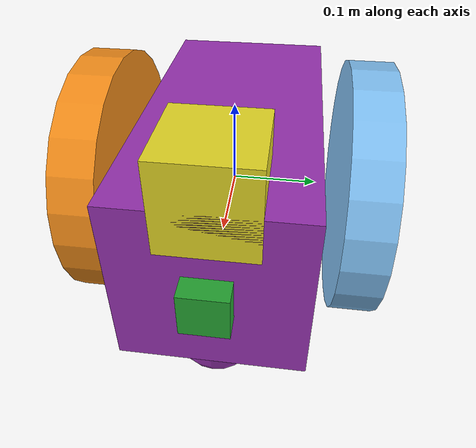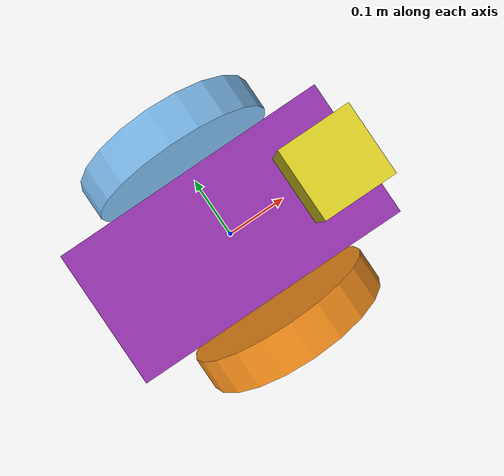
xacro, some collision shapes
<?xml version='1.0'?>

<robot name="my_robot" xmlns:xacro="http://www.ros.org/wiki/xacro">

    <xacro:include filename="$(find my_robot)/urdf/my_robot.gazebo" />
    <link name="robot_footprint"></link>

    <joint name="robot_footprint_joint" type="fixed">
        <origin xyz="0 0 0" rpy="0 0 0" />
        <parent link="robot_footprint"/>
        <child link="chassis" />
    </joint>

    <link name='chassis'>
        <pose>0 0 0.15 0 0 0</pose>

        <inertial>
            <mass value="15.0"/>
            <origin xyz="0.0 0 0" rpy=" 0 0 0"/>
            <inertia
                ixx="0.1" ixy="0" ixz="0"
                iyy="0.1" iyz="0"
                izz="0.1"
            />
        </inertial>

        <collision name='collision'>
            <origin xyz="0 0 0" rpy=" 0 0 0"/>
            <geometry>
            <box size=".4 .2 .2"/>
            </geometry>
        </collision>

        <visual name='chassis_visual'>
            <origin xyz="0 0 0" rpy=" 0 0 0"/>
            <geometry>
            <box size=".4 .2 .2"/>
            </geometry>
        </visual>

        <collision name='back_caster_collision'>
            <origin xyz="-0.15 0 -0.10" rpy=" 0 0 0"/>
            <geometry>
            <sphere radius="0.0499"/>
            </geometry>
        </collision>

        <visual name='back_caster_visual'>
            <origin xyz="-0.15 0 -0.10" rpy=" 0 0 0"/>
            <geometry>
            <sphere radius="0.05"/>
            </geometry>
        </visual>

        <collision name='front_caster_collision'>
            <origin xyz="0.15 0 -0.10" rpy=" 0 0 0"/>
            <geometry>
            <sphere radius="0.0499"/>
            </geometry>
        </collision>

        <visual name='front_caster_visual'>
            <origin xyz="0.15 0 -0.10" rpy=" 0 0 0"/>
            <geometry>
            <sphere radius="0.05"/>
            </geometry>
        </visual>

    </link>

    <link name="left_wheel">
        <collision>
            <origin xyz="0 0 0" rpy=" 0 1.5707 1.5707"/>
            <geometry>
                <cylinder radius="0.15" length="0.05"/>
            </geometry>

        </collision>

        <inertial>
            <mass value="5"/>
            <origin xyz="0 0 0" rpy=" 0 1.5707 1.5707"/>
            <inertia
                ixx="0.1" ixy="0" ixz="0"
                iyy="0.1" iyz="0"
                izz="0.1"
            />
        </inertial>

        <visual>
            <mass value="5"/>
            <origin xyz="0 0 0" rpy=" 0 1.5707 1.5707"/>
            <geometry>
                <cylinder radius="0.15" length="0.05"/>
            </geometry>
        </visual>

    </link>

     <link name="right_wheel">
        <collision>
            <origin xyz="0 0 0" rpy=" 0 1.5707 1.5707"/>
            <geometry>
                <cylinder radius="0.15" length="0.05"/>
            </geometry>

        </collision>

        <inertial>
            <mass value="5"/>
            <origin xyz="0 0 0" rpy=" 0 1.5707 1.5707"/>
            <inertia
                ixx="0.1" ixy="0" ixz="0"
                iyy="0.1" iyz="0"
                izz="0.1"
            />
        </inertial>

        <visual>
            <origin xyz="0 0 0" rpy=" 0 1.5707 1.5707"/>
            <geometry>
                <cylinder radius="0.15" length="0.05"/>
            </geometry>
        </visual>

    </link>

    <joint type="continuous" name="left_wheel_hinge">
        <origin xyz="0 0.15 0" rpy="0 0 0"/>
        <child link="left_wheel"/>
        <parent link="chassis"/>
        <axis xyz="0 1 0" rpy="0 0 0"/>
        <limit effort="10000" velocity="1000"/>
        <dynamics damping="1.0" friction="1.0"/>
    </joint>

    <joint type="continuous" name="right_wheel_hinge">
        <origin xyz="0 -0.15 0" rpy="0 0 0"/>
        <child link="right_wheel"/>
        <parent link="chassis"/>
        <axis xyz="0 1 0" rpy="0 0 0"/>
        <limit effort="10000" velocity="1000"/>
        <dynamics damping="1.0" friction="1.0"/>
    </joint>

    <!-- lesson 4.7 add camera -->
    <link name="camera">
        <collision>
            <origin xyz="0 0 0" rpy="0 0 0"/>
            <geometry>
                <box size="0.05 0.05 0.05" />
            </geometry>

        </collision>

        <inertial>
            <origin xyz="0 0 0" rpy="0 0 0"/>
            <mass   value="0.1"/>
            <inertia
                ixx="1e-6" ixy="0" ixz="0"
                iyy="1e-6" iyz="0"
                izz="1e-6"
            />

        </inertial>
        <visual>
            <origin xyz="0 0 0" rpy=" 0 0 0"/>
            <geometry>
                <box size="0.05 0.05 0.05" />
            </geometry>
        </visual>

    </link>

    <joint name="camera_joint" type="fixed">
        <axis xyz="0 1 0"/>
        <origin xyz="0.2 0 0" rpy="0 0 0" />
        <parent link="chassis"/>
        <child link="camera"/>
    </joint>

    <!-- 4.7 add lidar -->
     <link name="hokuyo">
        <collision>
            <origin xyz="0 0 0" rpy="0 0 0"/>
            <geometry>
                <box size="0.1 0.1 0.1" />
            </geometry>

        </collision>

        <inertial>
            <origin xyz="0 0 0" rpy="0 0 0"/>
            <mass value="1e-5" />
            <inertia
                ixx="1e-6" ixy="0" ixz="0"
                iyy="1e-6" iyz="0"
                izz="1e-6"
            />
        </inertial>

        <visual>
            <origin xyz="0 0 0" rpy="0 0 0"/>
            <geometry>
                <mesh filename="package://my_robot/meshes/hokuyo.dae" />
            </geometry>
        </visual>
     </link>

     <joint name="hokuyo_joint" type="fixed">
        <axis xyz="0 1 0"/>
        <origin xyz="0.15 0 .1" rpy="0 0 0" />
        <parent link="chassis"/>
        <child link="hokuyo"/>
     </joint>

     <!-- 4.7 color -->
     <gazebo reference="left_wheel">
        <material>Gazebo/SkyBlue</material>
    </gazebo>

    <gazebo reference="right_wheel">
        <material>Gazebo/Orange</material>
    </gazebo>

    <gazebo reference="chassis">
        <material>Gazebo/Purple</material>
    </gazebo>

    <gazebo reference="camera">
        <material>Gazebo/GreenGlow</material>
    </gazebo>

    <gazebo reference="hokuyo">
        <material>Gzebo/Yellow</material>
    </gazebo>
</robot>
